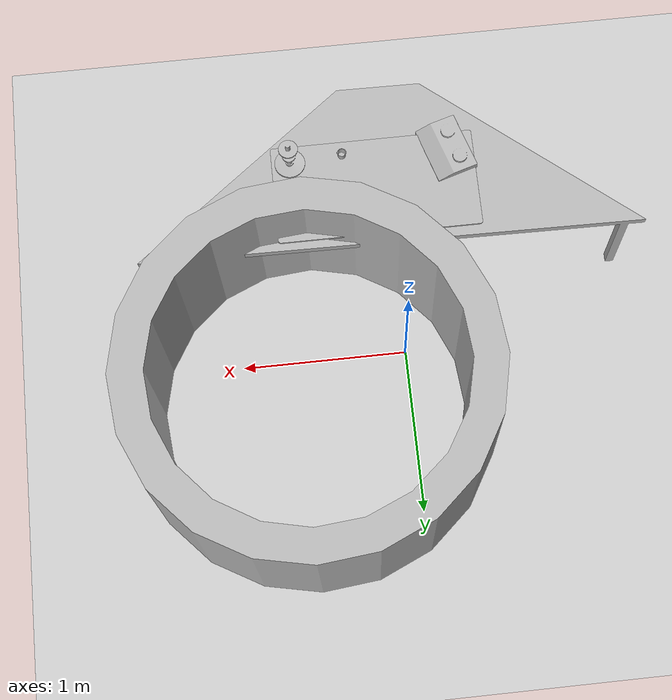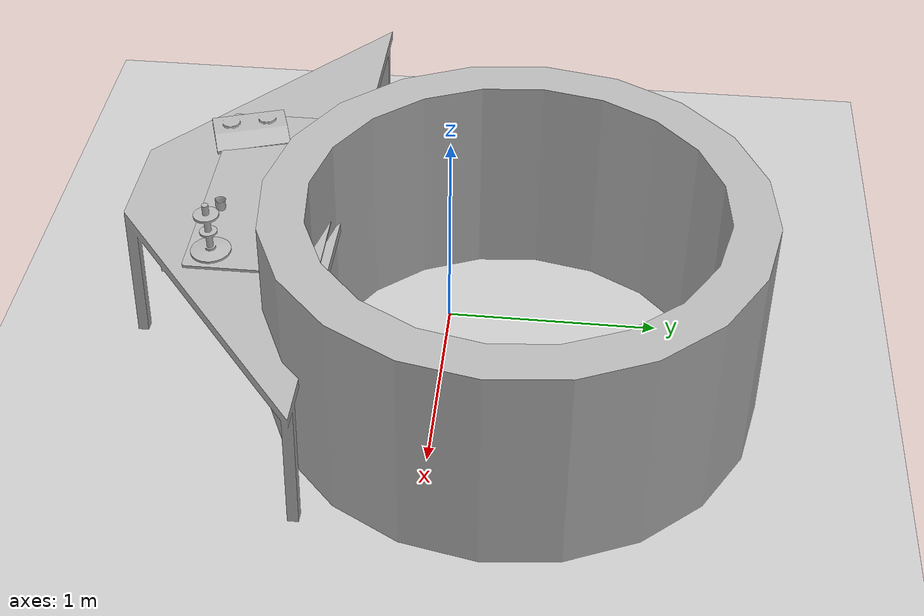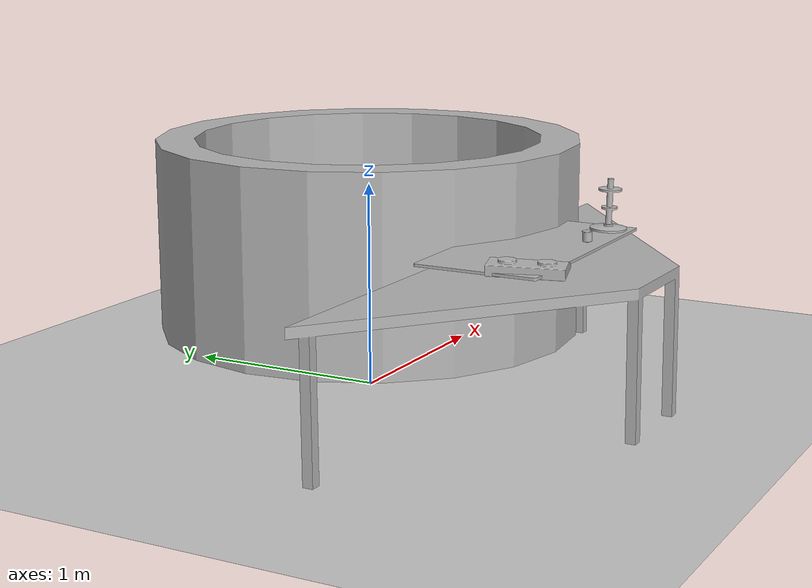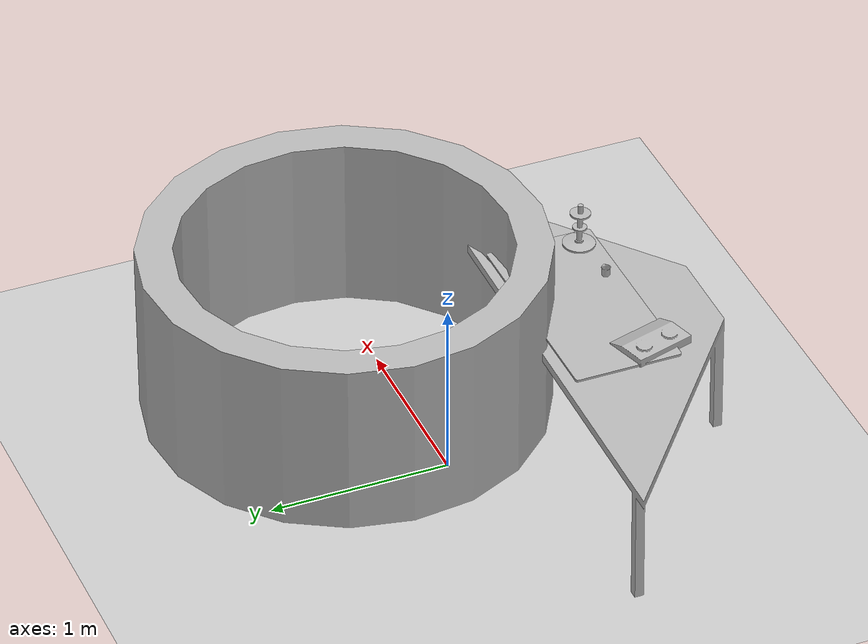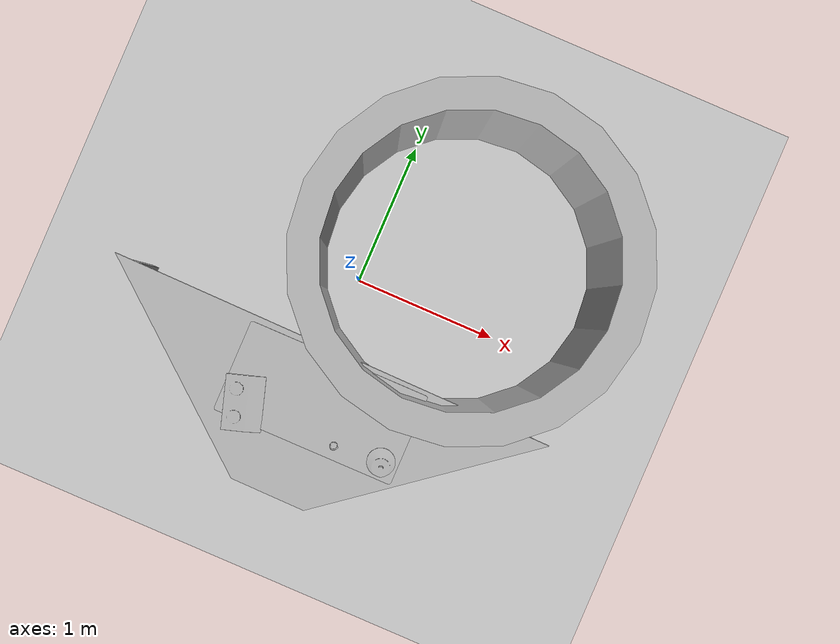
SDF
<sdf version="1.6">
 <world name="default">
  <light name="sun" type="directional">
   <pose>0 0 10 0 -0 0</pose>
   <diffuse>0.8 0.8 0.8 1</diffuse>
   <specular>0.1 0.1 0.1 1</specular>
   <attenuation>
    <range>1000</range>
    <constant>0.9</constant>
    <linear>0.01</linear>
    <quadratic>0.001</quadratic>
   </attenuation>
   <direction>-0.5 0.5 -1</direction>
  </light>
  <model name="ground_plane">
   <static>1</static>
   <link name="link">
    <collision name="collision">
     <geometry><plane><normal>0 0 1</normal><size>100 100</size></plane></geometry>
     <surface><friction><ode><mu>100</mu><mu2>50</mu2></ode></friction></surface>
    </collision>
    <visual name="visual">
     <cast_shadows>0</cast_shadows>
     <geometry><plane><normal>0 0 1</normal><size>100 100</size></plane></geometry>
     <material>
      <script><uri>file://media/materials/scripts/gazebo.material</uri><name>Gazebo/Grey</name></script>
     </material>
    </visual>
   </link>
  </model>
  <gravity>0 0 -9.8</gravity>
  <magnetic_field>6e-06 2.3e-05 -4.2e-05</magnetic_field>
  <atmosphere type="adiabatic"/>
  <physics name="default_physics" default="0" type="ode">
   <max_step_size>0.001</max_step_size>
   <real_time_factor>1</real_time_factor>
   <real_time_update_rate>1000</real_time_update_rate>
  </physics>
  <scene><ambient>0.4 0.4 0.4 1</ambient><background>0.7 0.7 0.7 1</background><shadows>1</shadows></scene>
  <spherical_coordinates>
   <surface_model>EARTH_WGS84</surface_model>
   <latitude_deg>0</latitude_deg>
   <longitude_deg>0</longitude_deg>
   <elevation>0</elevation>
   <heading_deg>0</heading_deg>
  </spherical_coordinates>
  <model name="drum">
   <pose>0.59 0.34 0.13  0 0 0</pose>
   <static>true</static>
   <link name="drum_link">
    <visual name="drum_visual">
     <geometry><mesh><uri>model://invite_motoman_gazebo/worlds/meshes/drum.stl</uri></mesh></geometry>
    </visual>
    <collision name="collision">
     <geometry><mesh><uri>model://invite_motoman_gazebo/worlds/meshes/drum.stl</uri></mesh></geometry>
    </collision>
   </link>
  </model>
  <model name="table">
   <link name="table_link">
    <pose>0.48 -0.77 0.33  3.14 -3.14 0.14</pose>
    <visual name="visual">
     <geometry><mesh><uri>model://invite_motoman_gazebo/worlds/meshes/table.stl</uri></mesh></geometry>
    </visual>
    <collision name="table_collision">
     <geometry><mesh><uri>model://invite_motoman_gazebo/worlds/meshes/table.stl</uri></mesh></geometry>
    </collision>
   </link>
  </model>
  <model name="perforated_plate">
   <pose>0.1 -0.51 0.76  1.57 0 0</pose>
   <static>true</static>
   <link name="perforated_plate_link">
    <visual name="p_plate_visual">
     <geometry><mesh><uri>model://invite_motoman_gazebo/worlds/meshes/perforated_plate.stl</uri></mesh></geometry>
    </visual>
   </link>
  </model>
  <model name="pipette_holder">
   <pose>0.59 -1 0.77  1.6 0 0</pose>
   <static>true</static>
   <link name="pipette_holder_link">
    <visual name="pipette_holder_visual">
     <geometry><mesh><uri>model://invite_motoman_gazebo/worlds/meshes/pipette_holder.stl</uri></mesh></geometry>
    </visual>
   </link>
  </model>
  <model name="pipette_tip_holder">
   <pose>0.61 -0.66 0.77  1.56 0 0</pose>
   <static>true</static>
   <link name="pipette_tip_holder_link">
    <visual name="pipette_tip_holder_visual">
     <geometry>
      <mesh><uri>model://invite_motoman_gazebo/worlds/meshes/pipette_tip_holder.stl</uri></mesh>
     </geometry>
    </visual>
   </link>
  </model>
  <model name="pump">
   <pose>-0.34 -1 0.75  1.59 -0.02 0.3</pose>
   <static>true</static>
   <link name="pump_link">
    <visual name="pump_visual">
     <geometry><mesh><uri>model://invite_motoman_gazebo/worlds/meshes/pump.stl</uri></mesh></geometry>
    </visual>
   </link>
  </model>
  <model name="viker_small">
   <pose>0.28 -1.02 0.77  1.56 -0.03 0</pose>
   <static>true</static>
   <link name="viker_small_link">
    <visual name="viker_small_visual">
     <geometry><mesh><uri>model://invite_motoman_gazebo/worlds/meshes/viker_small.stl</uri></mesh></geometry>
    </visual>
   </link>
  </model>
 </world>
</sdf>
